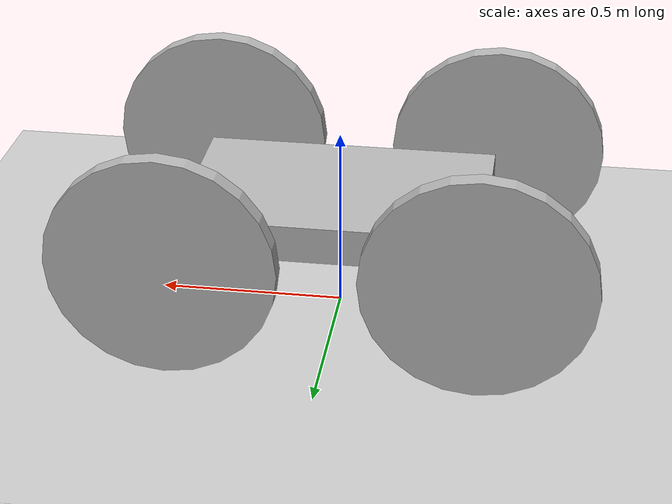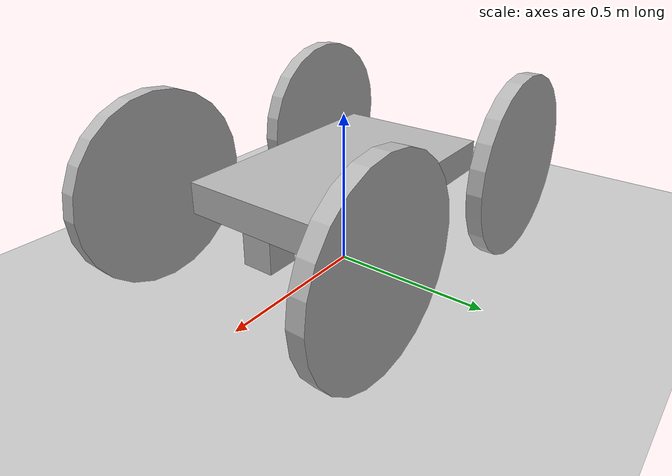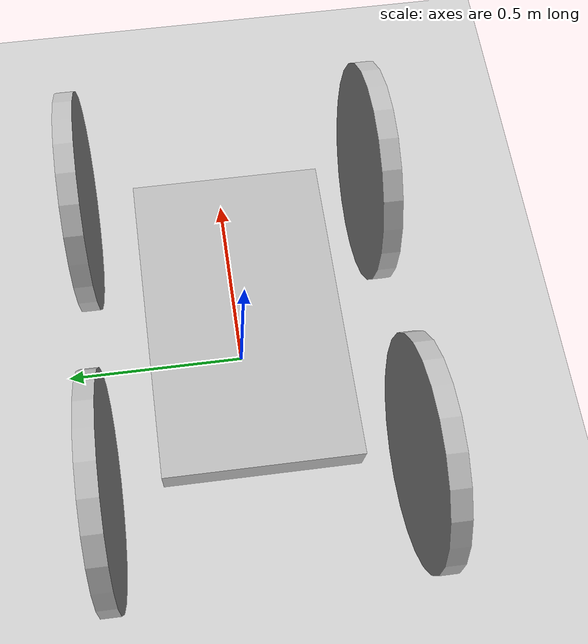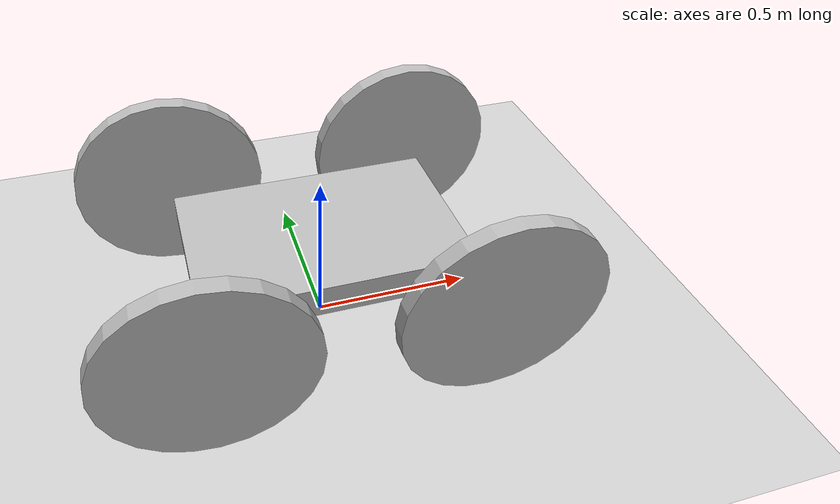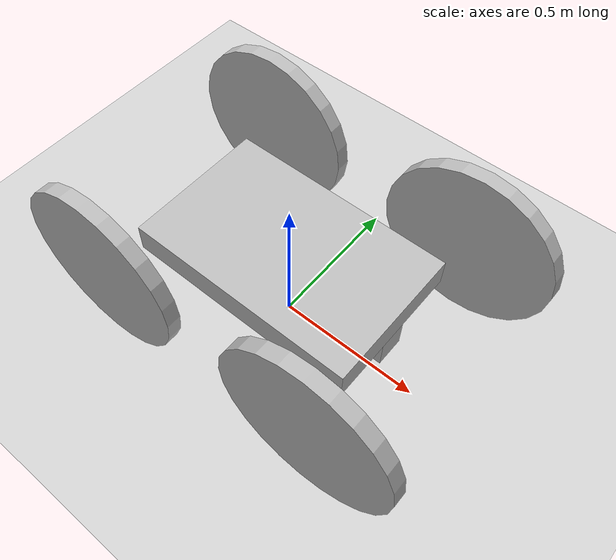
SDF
<sdf version="1.7">
 <world name="default">
  <light name="sun" type="directional">
   <pose>0 0 10 0 -0 0</pose>
   <diffuse>0.8 0.8 0.8 1</diffuse>
   <specular>0.2 0.2 0.2 1</specular>
   <attenuation>
    <range>1000</range>
    <constant>0.9</constant>
    <linear>0.01</linear>
    <quadratic>0.001</quadratic>
   </attenuation>
   <direction>-0.5 0.1 -0.9</direction>
   <spot><inner_angle>0</inner_angle><outer_angle>0</outer_angle><falloff>0</falloff></spot>
  </light>
  <gravity>0 0 -9.8</gravity>
  <magnetic_field>6e-06 2.3e-05 -4.2e-05</magnetic_field>
  <atmosphere type="adiabatic"/>
  <physics type="ode">
   <max_step_size>0.001</max_step_size>
   <real_time_factor>1</real_time_factor>
   <real_time_update_rate>1000</real_time_update_rate>
  </physics>
  <scene><ambient>0.4 0.4 0.4 1</ambient><background>0.7 0.7 0.7 1</background><shadows>1</shadows></scene>
  <spherical_coordinates>
   <surface_model>EARTH_WGS84</surface_model>
   <latitude_deg>0</latitude_deg>
   <longitude_deg>0</longitude_deg>
   <elevation>0</elevation>
   <heading_deg>0</heading_deg>
  </spherical_coordinates>
  <model name="Floor">
   <static>1</static>
   <link name="floor">
    <collision name="collision">
     <geometry><plane><normal>0 0 1</normal><size>10 10</size></plane></geometry>
     <surface><friction><ode><mu>100</mu><mu2>50</mu2></ode></friction></surface>
    </collision>
    <visual name="visual">
     <cast_shadows>0</cast_shadows>
     <geometry><plane><normal>0 0 1</normal><size>8 8</size></plane></geometry>
     <material>
      <script><uri>model://Floor/materials/scripts/erc.material</uri><name>Floor/erc</name></script>
     </material>
    </visual>
   </link>
   <pose>2.22882 2.46313 0 0 -0 1.5707</pose>
  </model>
  <model name="Line_follower">
   <static>0</static>
   <link name="chassis">
    <pose>0 0 0.3 0 -0 0</pose>
    <collision name="collision"><geometry><box><size>0.8 0.5 0.1</size></box></geometry></collision>
    <visual name="visual"><geometry><box><size>0.8 0.5 0.1</size></box></geometry></visual>
    <inertial>
     <inertia><ixx>1</ixx><ixy>0</ixy><ixz>0</ixz><iyy>1</iyy><iyz>0</iyz><izz>1</izz></inertia>
     <mass>1</mass>
    </inertial>
   </link>
   <link name="left_back">
    <pose>-0.4 0.4 0.3 -0 1.5707 1.5707</pose>
    <collision name="collision">
     <geometry><cylinder><radius>0.3</radius><length>0.05</length></cylinder></geometry>
    </collision>
    <visual name="visual">
     <geometry><cylinder><radius>0.3</radius><length>0.05</length></cylinder></geometry>
    </visual>
    <inertial>
     <inertia><ixx>1</ixx><ixy>0</ixy><ixz>0</ixz><iyy>1</iyy><iyz>0</iyz><izz>1</izz></inertia>
     <mass>1</mass>
    </inertial>
   </link>
   <link name="left_front">
    <pose>0.4 0.4 0.3 -0 1.5707 1.5707</pose>
    <collision name="collision">
     <geometry><cylinder><radius>0.3</radius><length>0.05</length></cylinder></geometry>
    </collision>
    <visual name="visual">
     <geometry><cylinder><radius>0.3</radius><length>0.05</length></cylinder></geometry>
    </visual>
    <inertial>
     <inertia><ixx>1</ixx><ixy>0</ixy><ixz>0</ixz><iyy>1</iyy><iyz>0</iyz><izz>1</izz></inertia>
     <mass>1</mass>
    </inertial>
   </link>
   <link name="right_back">
    <pose>-0.4 -0.4 0.3 -0 1.5707 1.5707</pose>
    <collision name="collision">
     <geometry><cylinder><radius>0.3</radius><length>0.05</length></cylinder></geometry>
    </collision>
    <visual name="visual">
     <geometry><cylinder><radius>0.3</radius><length>0.05</length></cylinder></geometry>
    </visual>
    <inertial>
     <inertia><ixx>1</ixx><ixy>0</ixy><ixz>0</ixz><iyy>1</iyy><iyz>0</iyz><izz>1</izz></inertia>
     <mass>1</mass>
    </inertial>
   </link>
   <link name="right_front">
    <pose>0.4 -0.4 0.3 -0 1.5707 1.5707</pose>
    <collision name="collision">
     <geometry><cylinder><radius>0.3</radius><length>0.05</length></cylinder></geometry>
    </collision>
    <visual name="visual">
     <geometry><cylinder><radius>0.3</radius><length>0.05</length></cylinder></geometry>
    </visual>
    <inertial>
     <inertia><ixx>1</ixx><ixy>0</ixy><ixz>0</ixz><iyy>1</iyy><iyz>0</iyz><izz>1</izz></inertia>
     <mass>1</mass>
    </inertial>
   </link>
   <joint name="left_front_hinge" type="revolute">
    <pose>0 0 -0.09 0 -0 0</pose>
    <child>left_front</child>
    <parent>chassis</parent>
    <axis>
     <xyz expressed_in="__model__">0 1 0</xyz>
     <limit><lower>-1e+16</lower><upper>1e+16</upper></limit>
     <dynamics><spring_reference>0</spring_reference><spring_stiffness>0</spring_stiffness></dynamics>
    </axis>
   </joint>
   <joint name="right_back_hinge" type="revolute">
    <pose>0 0 0.09 0 -0 0</pose>
    <child>right_back</child>
    <parent>chassis</parent>
    <axis>
     <xyz expressed_in="__model__">0 1 0</xyz>
     <limit><lower>-1e+16</lower><upper>1e+16</upper></limit>
     <dynamics><spring_reference>0</spring_reference><spring_stiffness>0</spring_stiffness></dynamics>
    </axis>
   </joint>
   <joint name="right_front_hinge" type="revolute">
    <pose>0 0 0.09 0 -0 0</pose>
    <child>right_front</child>
    <parent>chassis</parent>
    <axis>
     <xyz expressed_in="__model__">0 1 0</xyz>
     <limit><lower>-1e+16</lower><upper>1e+16</upper></limit>
     <dynamics><spring_reference>0</spring_reference><spring_stiffness>0</spring_stiffness></dynamics>
    </axis>
   </joint>
   <joint name="left_back_hinge" type="revolute">
    <pose>0 0 -0.09 0 -0 0</pose>
    <child>left_back</child>
    <parent>chassis</parent>
    <axis>
     <xyz expressed_in="__model__">0 1 0</xyz>
     <limit><lower>-1e+16</lower><upper>1e+16</upper></limit>
     <dynamics><spring_reference>0</spring_reference><spring_stiffness>0</spring_stiffness></dynamics>
    </axis>
   </joint>
   <link name="camera::link">
    <sensor name="camera" type="camera">
     <camera>
      <horizontal_fov>1.047</horizontal_fov>
      <image><width>320</width><height>240</height></image>
      <clip><near>0.01</near><far>100</far></clip>
     </camera>
     <always_on>1</always_on>
     <update_rate>6</update_rate>
     <visualize>1</visualize>
    </sensor>
    <pose>0.35 -0 0.2 0 1.5707 0</pose>
    <visual name="visual"><geometry><box><size>0.1 0.1 0.1</size></box></geometry></visual>
    <collision name="collision"><geometry><box><size>0.1 0.1 0.1</size></box></geometry></collision>
    <inertial>
     <inertia><ixx>1</ixx><ixy>0</ixy><ixz>0</ixz><iyy>1</iyy><iyz>0</iyz><izz>1</izz></inertia>
     <mass>1</mass>
    </inertial>
   </link>
   <joint name="camera_joint" type="fixed"><parent>chassis</parent><child>camera::link</child></joint>
   <plugin name="controller" filename="libcontroller.so">
    <velocity>0.3</velocity>
    <positive>81.3</positive>
    <negative>85</negative>
    <ratio>5</ratio>
   </plugin>
  </model>
 </world>
</sdf>
